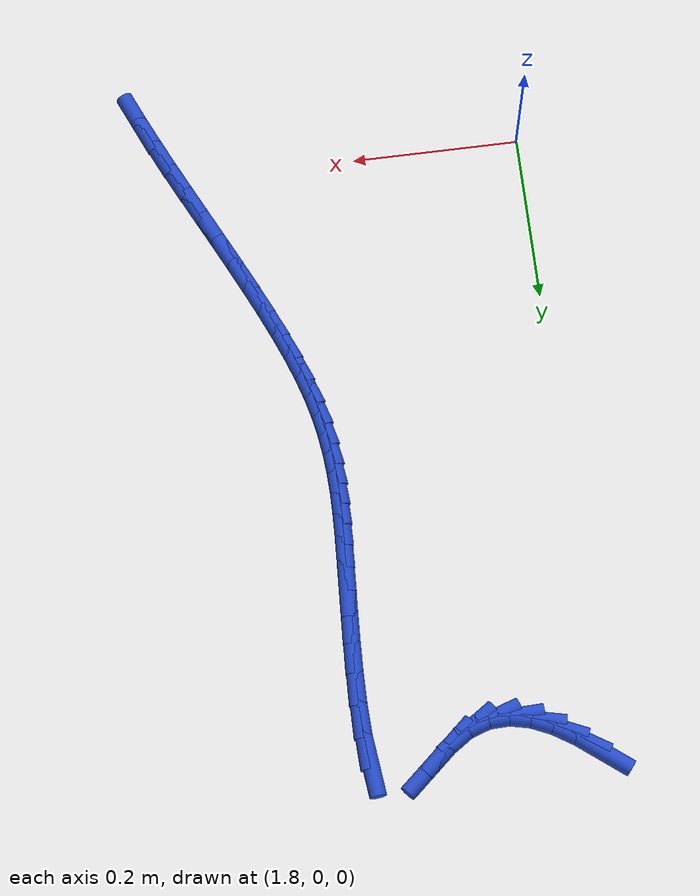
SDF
<sdf version="1.6">
 <world name="default">
  <model name="ground_plane">
   <static>1</static>
   <link name="link">
    <collision name="collision">
     <geometry><plane><normal>0 0 1</normal><size>100 100</size></plane></geometry>
     <surface><friction><ode><mu>100</mu><mu2>50</mu2></ode></friction></surface>
    </collision>
    <visual name="visual">
     <cast_shadows>0</cast_shadows>
     <geometry><plane><normal>0 0 1</normal><size>100 100</size></plane></geometry>
     <material>
      <script><uri>file://media/materials/scripts/gazebo.material</uri><name>Gazebo/WhiteGlow</name></script>
     </material>
    </visual>
   </link>
  </model>
  <model name="line">
   <link name="link_100">
    <pose>1.8095676655862085 0.7543920248802976 0.01 0 1.57 -0.6630253653420836</pose>
    <collision name="collision">
     <geometry><cylinder><radius>0.01</radius><length>0.08</length></cylinder></geometry>
    </collision>
    <visual name="visual">
     <material>
      <script><name>Gazebo/Blue</name><uri>file://media/materials/scripts/gazebo.material</uri></script>
     </material>
     <geometry><cylinder><radius>0.01</radius><length>0.08</length></cylinder></geometry>
    </visual>
   </link>
   <link name="link_101">
    <pose>1.8337794810649062 0.7354834686850009 0.01 0 1.57 -0.5648291781847535</pose>
    <collision name="collision">
     <geometry><cylinder><radius>0.01</radius><length>0.08</length></cylinder></geometry>
    </collision>
    <visual name="visual">
     <material>
      <script><name>Gazebo/Blue</name><uri>file://media/materials/scripts/gazebo.material</uri></script>
     </material>
     <geometry><cylinder><radius>0.01</radius><length>0.08</length></cylinder></geometry>
    </visual>
   </link>
   <link name="link_102">
    <pose>1.8582527417416561 0.7199748275089235 0.01 0 1.57 -0.4225771495375925</pose>
    <collision name="collision">
     <geometry><cylinder><radius>0.01</radius><length>0.08</length></cylinder></geometry>
    </collision>
    <visual name="visual">
     <material>
      <script><name>Gazebo/Blue</name><uri>file://media/materials/scripts/gazebo.material</uri></script>
     </material>
     <geometry><cylinder><radius>0.01</radius><length>0.08</length></cylinder></geometry>
    </visual>
   </link>
   <link name="link_103">
    <pose>1.8828933424809757 0.7088947571348885 0.01 0 1.57 -0.22370986572213514</pose>
    <collision name="collision">
     <geometry><cylinder><radius>0.01</radius><length>0.08</length></cylinder></geometry>
    </collision>
    <visual name="visual">
     <material>
      <script><name>Gazebo/Blue</name><uri>file://media/materials/scripts/gazebo.material</uri></script>
     </material>
     <geometry><cylinder><radius>0.01</radius><length>0.08</length></cylinder></geometry>
    </visual>
   </link>
   <link name="link_104">
    <pose>1.9076071781473833 0.7032719133457193 0.01 0 1.57 0.034936566053172725</pose>
    <collision name="collision">
     <geometry><cylinder><radius>0.01</radius><length>0.08</length></cylinder></geometry>
    </collision>
    <visual name="visual">
     <material>
      <script><name>Gazebo/Blue</name><uri>file://media/materials/scripts/gazebo.material</uri></script>
     </material>
     <geometry><cylinder><radius>0.01</radius><length>0.08</length></cylinder></geometry>
    </visual>
   </link>
   <link name="link_105">
    <pose>1.9323001436053957 0.7041349519242388 0.01 0 1.57 0.32850638415558625</pose>
    <collision name="collision">
     <geometry><cylinder><radius>0.01</radius><length>0.08</length></cylinder></geometry>
    </collision>
    <visual name="visual">
     <material>
      <script><name>Gazebo/Blue</name><uri>file://media/materials/scripts/gazebo.material</uri></script>
     </material>
     <geometry><cylinder><radius>0.01</radius><length>0.08</length></cylinder></geometry>
    </visual>
   </link>
   <link name="link_106">
    <pose>1.956878133719531 0.7125125286532699 0.01 0 1.57 0.5945838810069699</pose>
    <collision name="collision">
     <geometry><cylinder><radius>0.01</radius><length>0.08</length></cylinder></geometry>
    </collision>
    <visual name="visual">
     <material>
      <script><name>Gazebo/Blue</name><uri>file://media/materials/scripts/gazebo.material</uri></script>
     </material>
     <geometry><cylinder><radius>0.01</radius><length>0.08</length></cylinder></geometry>
    </visual>
   </link>
   <link name="link_107">
    <pose>1.9811763022053563 0.7289433143550955 0.01 0 1.57 0.7255651013004529</pose>
    <collision name="collision">
     <geometry><cylinder><radius>0.01</radius><length>0.08</length></cylinder></geometry>
    </collision>
    <visual name="visual">
     <material>
      <script><name>Gazebo/Blue</name><uri>file://media/materials/scripts/gazebo.material</uri></script>
     </material>
     <geometry><cylinder><radius>0.01</radius><length>0.08</length></cylinder></geometry>
    </visual>
   </link>
   <link name="link_108">
    <pose>2.0043897634845433 0.7495327803236698 0.01 0 1.57 0.7225101343916709</pose>
    <collision name="collision">
     <geometry><cylinder><radius>0.01</radius><length>0.08</length></cylinder></geometry>
    </collision>
    <visual name="visual">
     <material>
      <script><name>Gazebo/Blue</name><uri>file://media/materials/scripts/gazebo.material</uri></script>
     </material>
     <geometry><cylinder><radius>0.01</radius><length>0.08</length></cylinder></geometry>
    </visual>
   </link>
   <link name="link_113">
    <pose>2.0719532198094144 0.7354058139450469 0.01 0 1.57 -1.46303797943989</pose>
    <collision name="collision">
     <geometry><cylinder><radius>0.01</radius><length>0.08</length></cylinder></geometry>
    </collision>
    <visual name="visual">
     <material>
      <script><name>Gazebo/Blue</name><uri>file://media/materials/scripts/gazebo.material</uri></script>
     </material>
     <geometry><cylinder><radius>0.01</radius><length>0.08</length></cylinder></geometry>
    </visual>
   </link>
   <link name="link_114">
    <pose>2.0753795880259585 0.7037322048798184 0.01 0 1.57 -1.534532175089762</pose>
    <collision name="collision">
     <geometry><cylinder><radius>0.01</radius><length>0.08</length></cylinder></geometry>
    </collision>
    <visual name="visual">
     <material>
      <script><name>Gazebo/Blue</name><uri>file://media/materials/scripts/gazebo.material</uri></script>
     </material>
     <geometry><cylinder><radius>0.01</radius><length>0.08</length></cylinder></geometry>
    </visual>
   </link>
   <link name="link_115">
    <pose>2.076692134226662 0.6675540312012395 0.01 0 1.57 1.5655530102309831</pose>
    <collision name="collision">
     <geometry><cylinder><radius>0.01</radius><length>0.08</length></cylinder></geometry>
    </collision>
    <visual name="visual">
     <material>
      <script><name>Gazebo/Blue</name><uri>file://media/materials/scripts/gazebo.material</uri></script>
     </material>
     <geometry><cylinder><radius>0.01</radius><length>0.08</length></cylinder></geometry>
    </visual>
   </link>
   <link name="link_116">
    <pose>2.076492051803971 0.6293948648283595 0.01 0 1.57 1.541256317688618</pose>
    <collision name="collision">
     <geometry><cylinder><radius>0.01</radius><length>0.08</length></cylinder></geometry>
    </collision>
    <visual name="visual">
     <material>
      <script><name>Gazebo/Blue</name><uri>file://media/materials/scripts/gazebo.material</uri></script>
     </material>
     <geometry><cylinder><radius>0.01</radius><length>0.08</length></cylinder></geometry>
    </visual>
   </link>
   <link name="link_117">
    <pose>2.075380534150326 0.5917782776802284 0.01 0 1.57 1.5284081230499635</pose>
    <collision name="collision">
     <geometry><cylinder><radius>0.01</radius><length>0.08</length></cylinder></geometry>
    </collision>
    <visual name="visual">
     <material>
      <script><name>Gazebo/Blue</name><uri>file://media/materials/scripts/gazebo.material</uri></script>
     </material>
     <geometry><cylinder><radius>0.01</radius><length>0.08</length></cylinder></geometry>
    </visual>
   </link>
   <link name="link_118">
    <pose>2.07389607386274 0.5567786556831774 0.01 0 1.57 1.5215387930101176</pose>
    <collision name="collision">
     <geometry><cylinder><radius>0.01</radius><length>0.08</length></cylinder></geometry>
    </collision>
    <visual name="visual">
     <material>
      <script><name>Gazebo/Blue</name><uri>file://media/materials/scripts/gazebo.material</uri></script>
     </material>
     <geometry><cylinder><radius>0.01</radius><length>0.08</length></cylinder></geometry>
    </visual>
   </link>
   <link name="link_119">
    <pose>2.0723062925143245 0.5245298755734599 0.01 0 1.57 1.5206305894225516</pose>
    <collision name="collision">
     <geometry><cylinder><radius>0.01</radius><length>0.08</length></cylinder></geometry>
    </collision>
    <visual name="visual">
     <material>
      <script><name>Gazebo/Blue</name><uri>file://media/materials/scripts/gazebo.material</uri></script>
     </material>
     <geometry><cylinder><radius>0.01</radius><length>0.08</length></cylinder></geometry>
    </visual>
   </link>
   <link name="link_120">
    <pose>2.070805681936762 0.4946419155422678 0.01 0 1.57 1.5272324849775367</pose>
    <collision name="collision">
     <geometry><cylinder><radius>0.01</radius><length>0.08</length></cylinder></geometry>
    </collision>
    <visual name="visual">
     <material>
      <script><name>Gazebo/Blue</name><uri>file://media/materials/scripts/gazebo.material</uri></script>
     </material>
     <geometry><cylinder><radius>0.01</radius><length>0.08</length></cylinder></geometry>
    </visual>
   </link>
   <link name="link_121">
    <pose>2.0695887328180635 0.46672474558757154 0.01 0 1.57 1.5427513779058852</pose>
    <collision name="collision">
     <geometry><cylinder><radius>0.01</radius><length>0.08</length></cylinder></geometry>
    </collision>
    <visual name="visual">
     <material>
      <script><name>Gazebo/Blue</name><uri>file://media/materials/scripts/gazebo.material</uri></script>
     </material>
     <geometry><cylinder><radius>0.01</radius><length>0.08</length></cylinder></geometry>
    </visual>
   </link>
   <link name="link_122">
    <pose>2.068849935846238 0.4403883357073404 0.01 0 1.57 1.5681654977687134</pose>
    <collision name="collision">
     <geometry><cylinder><radius>0.01</radius><length>0.08</length></cylinder></geometry>
    </collision>
    <visual name="visual">
     <material>
      <script><name>Gazebo/Blue</name><uri>file://media/materials/scripts/gazebo.material</uri></script>
     </material>
     <geometry><cylinder><radius>0.01</radius><length>0.08</length></cylinder></geometry>
    </visual>
   </link>
   <link name="link_123">
    <pose>2.068783781709293 0.4152426558995442 0.01 0 1.57 -1.5379069769249876</pose>
    <collision name="collision">
     <geometry><cylinder><radius>0.01</radius><length>0.08</length></cylinder></geometry>
    </collision>
    <visual name="visual">
     <material>
      <script><name>Gazebo/Blue</name><uri>file://media/materials/scripts/gazebo.material</uri></script>
     </material>
     <geometry><cylinder><radius>0.01</radius><length>0.08</length></cylinder></geometry>
    </visual>
   </link>
   <link name="link_124">
    <pose>2.069584761095241 0.3908976761621531 0.01 0 1.57 -1.4931313706395286</pose>
    <collision name="collision">
     <geometry><cylinder><radius>0.01</radius><length>0.08</length></cylinder></geometry>
    </collision>
    <visual name="visual">
     <material>
      <script><name>Gazebo/Blue</name><uri>file://media/materials/scripts/gazebo.material</uri></script>
     </material>
     <geometry><cylinder><radius>0.01</radius><length>0.08</length></cylinder></geometry>
    </visual>
   </link>
   <link name="link_125">
    <pose>2.0714473646920903 0.36696336649313616 0.01 0 1.57 -1.4411125310715287</pose>
    <collision name="collision">
     <geometry><cylinder><radius>0.01</radius><length>0.08</length></cylinder></geometry>
    </collision>
    <visual name="visual">
     <material>
      <script><name>Gazebo/Blue</name><uri>file://media/materials/scripts/gazebo.material</uri></script>
     </material>
     <geometry><cylinder><radius>0.01</radius><length>0.08</length></cylinder></geometry>
    </visual>
   </link>
   <link name="link_126">
    <pose>2.07456608318785 0.34304969689046316 0.01 0 1.57 -1.3848019750008493</pose>
    <collision name="collision">
     <geometry><cylinder><radius>0.01</radius><length>0.08</length></cylinder></geometry>
    </collision>
    <visual name="visual">
     <material>
      <script><name>Gazebo/Blue</name><uri>file://media/materials/scripts/gazebo.material</uri></script>
     </material>
     <geometry><cylinder><radius>0.01</radius><length>0.08</length></cylinder></geometry>
    </visual>
   </link>
   <link name="link_127">
    <pose>2.07913540727053 0.3187666373521042 0.01 0 1.57 -1.3275547413505224</pose>
    <collision name="collision">
     <geometry><cylinder><radius>0.01</radius><length>0.08</length></cylinder></geometry>
    </collision>
    <visual name="visual">
     <material>
      <script><name>Gazebo/Blue</name><uri>file://media/materials/scripts/gazebo.material</uri></script>
     </material>
     <geometry><cylinder><radius>0.01</radius><length>0.08</length></cylinder></geometry>
    </visual>
   </link>
   <link name="link_128">
    <pose>2.0853498276281406 0.2937241578760289 0.01 0 1.57 -1.272492758274443</pose>
    <collision name="collision">
     <geometry><cylinder><radius>0.01</radius><length>0.08</length></cylinder></geometry>
    </collision>
    <visual name="visual">
     <material>
      <script><name>Gazebo/Blue</name><uri>file://media/materials/scripts/gazebo.material</uri></script>
     </material>
     <geometry><cylinder><radius>0.01</radius><length>0.08</length></cylinder></geometry>
    </visual>
   </link>
   <link name="link_129">
    <pose>2.0934029506114906 0.26753330554019455 0.01 0 1.57 -1.2243890113622218</pose>
    <collision name="collision">
     <geometry><cylinder><radius>0.01</radius><length>0.08</length></cylinder></geometry>
    </collision>
    <visual name="visual">
     <material>
      <script><name>Gazebo/Blue</name><uri>file://media/materials/scripts/gazebo.material</uri></script>
     </material>
     <geometry><cylinder><radius>0.01</radius><length>0.08</length></cylinder></geometry>
    </visual>
   </link>
   <link name="link_130">
    <pose>2.1033516827545373 0.2399716211956259 0.01 0 1.57 -1.1874793502043397</pose>
    <collision name="collision">
     <geometry><cylinder><radius>0.01</radius><length>0.08</length></cylinder></geometry>
    </collision>
    <visual name="visual">
     <material>
      <script><name>Gazebo/Blue</name><uri>file://media/materials/scripts/gazebo.material</uri></script>
     </material>
     <geometry><cylinder><radius>0.01</radius><length>0.08</length></cylinder></geometry>
    </visual>
   </link>
   <link name="link_131">
    <pose>2.1149697463936237 0.21116155036563974 0.01 0 1.57 -1.1598555258721528</pose>
    <collision name="collision">
     <geometry><cylinder><radius>0.01</radius><length>0.08</length></cylinder></geometry>
    </collision>
    <visual name="visual">
     <material>
      <script><name>Gazebo/Blue</name><uri>file://media/materials/scripts/gazebo.material</uri></script>
     </material>
     <geometry><cylinder><radius>0.01</radius><length>0.08</length></cylinder></geometry>
    </visual>
   </link>
   <link name="link_132">
    <pose>2.127995714493752 0.18126834880980436 0.01 0 1.57 -1.1396749894249238</pose>
    <collision name="collision">
     <geometry><cylinder><radius>0.01</radius><length>0.08</length></cylinder></geometry>
    </collision>
    <visual name="visual">
     <material>
      <script><name>Gazebo/Blue</name><uri>file://media/materials/scripts/gazebo.material</uri></script>
     </material>
     <geometry><cylinder><radius>0.01</radius><length>0.08</length></cylinder></geometry>
    </visual>
   </link>
   <link name="link_133">
    <pose>2.1421681600199274 0.1504572722876885 0.01 0 1.57 -1.1256758038070138</pose>
    <collision name="collision">
     <geometry><cylinder><radius>0.01</radius><length>0.08</length></cylinder></geometry>
    </collision>
    <visual name="visual">
     <material>
      <script><name>Gazebo/Blue</name><uri>file://media/materials/scripts/gazebo.material</uri></script>
     </material>
     <geometry><cylinder><radius>0.01</radius><length>0.08</length></cylinder></geometry>
    </visual>
   </link>
   <link name="link_134">
    <pose>2.1572256559371534 0.11889357655885915 0.01 0 1.57 -1.1170107223756436</pose>
    <collision name="collision">
     <geometry><cylinder><radius>0.01</radius><length>0.08</length></cylinder></geometry>
    </collision>
    <visual name="visual">
     <material>
      <script><name>Gazebo/Blue</name><uri>file://media/materials/scripts/gazebo.material</uri></script>
     </material>
     <geometry><cylinder><radius>0.01</radius><length>0.08</length></cylinder></geometry>
    </visual>
   </link>
   <link name="link_135">
    <pose>2.172906775210435 0.08674251738288517 0.01 0 1.57 -1.1131412286013427</pose>
    <collision name="collision">
     <geometry><cylinder><radius>0.01</radius><length>0.08</length></cylinder></geometry>
    </collision>
    <visual name="visual">
     <material>
      <script><name>Gazebo/Blue</name><uri>file://media/materials/scripts/gazebo.material</uri></script>
     </material>
     <geometry><cylinder><radius>0.01</radius><length>0.08</length></cylinder></geometry>
    </visual>
   </link>
   <link name="link_136">
    <pose>2.1889500908047745 0.054169350519334615 0.01 0 1.57 -1.1137723583919024</pose>
    <collision name="collision">
     <geometry><cylinder><radius>0.01</radius><length>0.08</length></cylinder></geometry>
    </collision>
    <visual name="visual">
     <material>
      <script><name>Gazebo/Blue</name><uri>file://media/materials/scripts/gazebo.material</uri></script>
     </material>
     <geometry><cylinder><radius>0.01</radius><length>0.08</length></cylinder></geometry>
    </visual>
   </link>
   <link name="link_137">
    <pose>2.205094175685178 0.02133933172777581 0.01 0 1.57 -1.1188162770784582</pose>
    <collision name="collision">
     <geometry><cylinder><radius>0.01</radius><length>0.08</length></cylinder></geometry>
    </collision>
    <visual name="visual">
     <material>
      <script><name>Gazebo/Blue</name><uri>file://media/materials/scripts/gazebo.material</uri></script>
     </material>
     <geometry><cylinder><radius>0.01</radius><length>0.08</length></cylinder></geometry>
    </visual>
   </link>
   <link name="link_138">
    <pose>2.2210776028166483 -0.011582283232223205 0.01 0 1.57 -1.1283777333460394</pose>
    <collision name="collision">
     <geometry><cylinder><radius>0.01</radius><length>0.08</length></cylinder></geometry>
    </collision>
    <visual name="visual">
     <material>
      <script><name>Gazebo/Blue</name><uri>file://media/materials/scripts/gazebo.material</uri></script>
     </material>
     <geometry><cylinder><radius>0.01</radius><length>0.08</length></cylinder></geometry>
    </visual>
   </link>
   <link name="link_139">
    <pose>2.2366389451641897 -0.04443023860109415 0.01 0 1.57 -1.1427581862190563</pose>
    <collision name="collision">
     <geometry><cylinder><radius>0.01</radius><length>0.08</length></cylinder></geometry>
    </collision>
    <visual name="visual">
     <material>
      <script><name>Gazebo/Blue</name><uri>file://media/materials/scripts/gazebo.material</uri></script>
     </material>
     <geometry><cylinder><radius>0.01</radius><length>0.08</length></cylinder></geometry>
    </visual>
   </link>
   <link name="link_140">
    <pose>2.251516775692806 -0.07703927861926843 0.01 0 1.57 -1.1624781962810005</pose>
    <collision name="collision">
     <geometry><cylinder><radius>0.01</radius><length>0.08</length></cylinder></geometry>
    </collision>
    <visual name="visual">
     <material>
      <script><name>Gazebo/Blue</name><uri>file://media/materials/scripts/gazebo.material</uri></script>
     </material>
     <geometry><cylinder><radius>0.01</radius><length>0.08</length></cylinder></geometry>
    </visual>
   </link>
  </model>
 </world>
</sdf>
